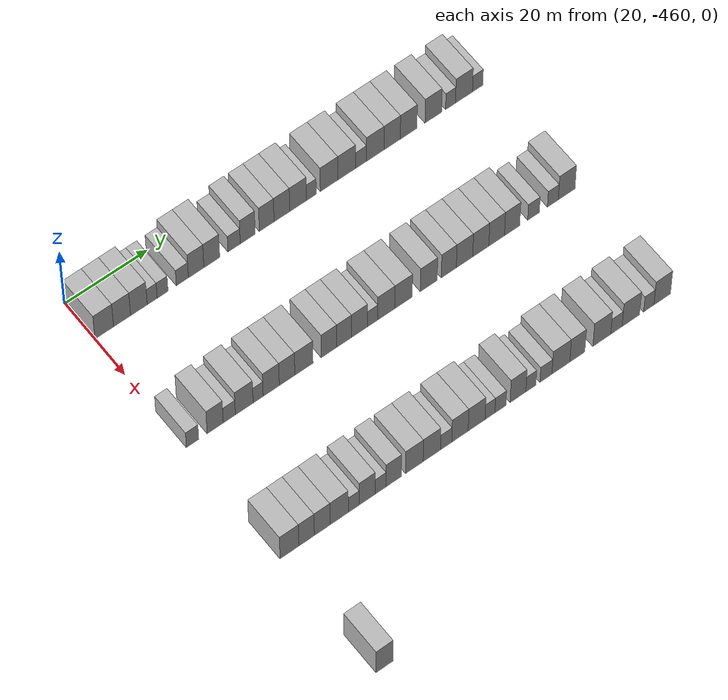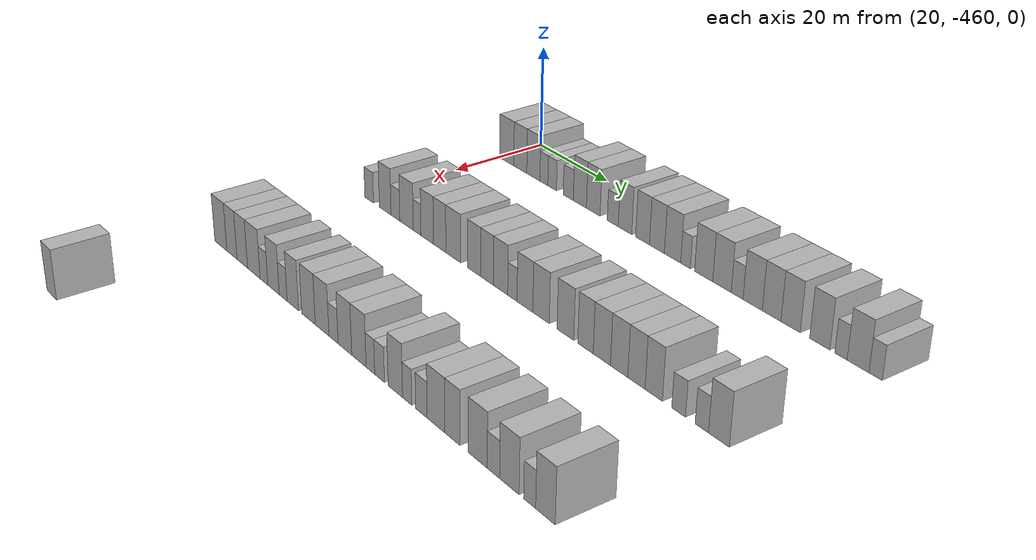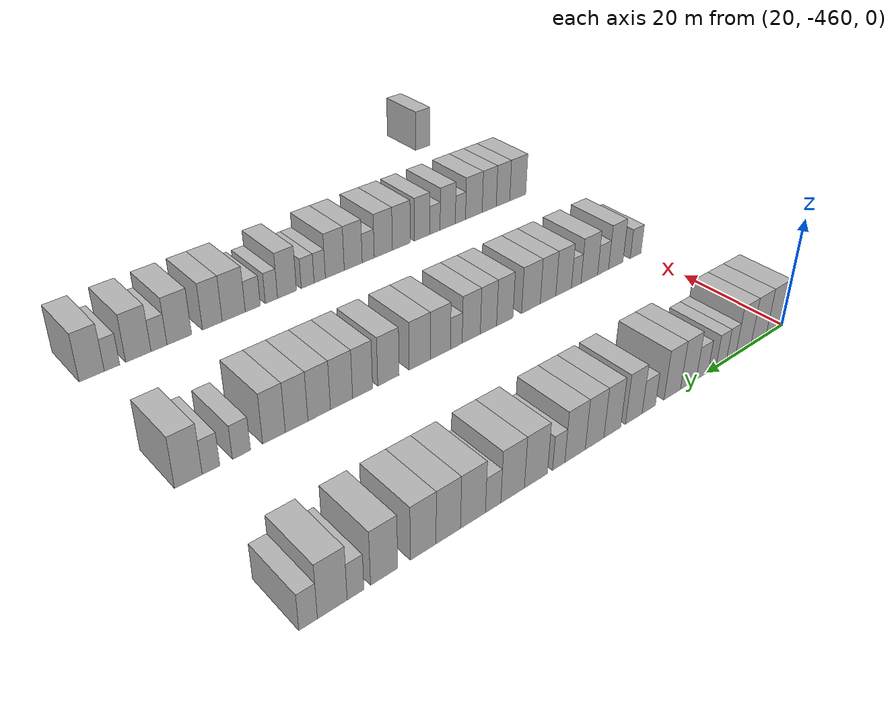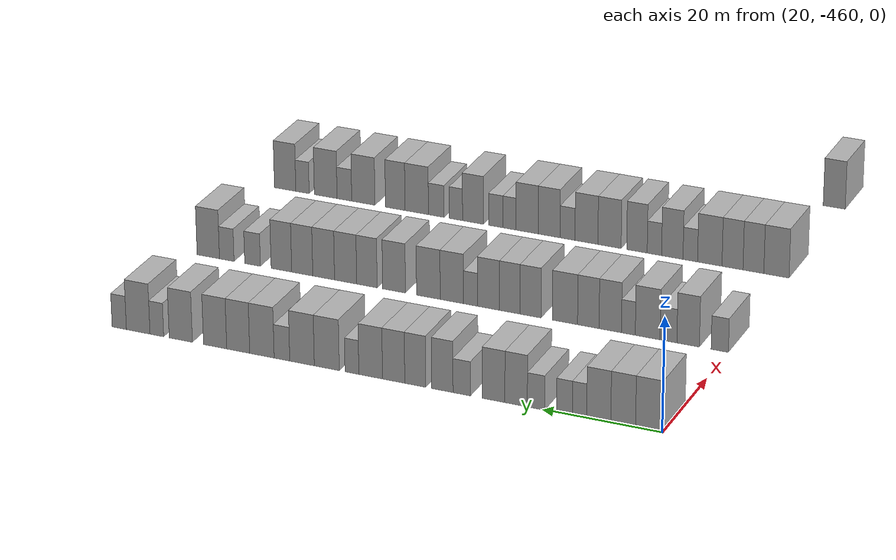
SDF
<sdf version="1.6">
 <world name="default">
  <model name="building_1">
   <static>1</static>
   <pose>25.0000 -457.7579 0 0.000000 0.000000 0.000000</pose>
   <link name="link">
    <pose>0 0 4.50 0 0 0</pose>
    <collision name="collision"><geometry><box><size>10.0000 4.4843 9.0000</size></box></geometry></collision>
    <visual name="visual">
     <cast_shadows>0</cast_shadows>
     <geometry><box><size>10.0000 4.4843 9.0000</size></box></geometry>
     <material>
      <script>
       <uri>model://HANNAS_wall/materials/scripts</uri>
       <uri>model://HANNAS_wall/materials/textures</uri>
       <name>vrc/HANNAS_wall</name>
      </script>
     </material>
    </visual>
   </link>
  </model>
  <model name="building_2">
   <static>1</static>
   <pose>25.0000 -453.4642 0 0.000000 0.000000 0.000000</pose>
   <link name="link">
    <pose>0 0 4.50 0 0 0</pose>
    <collision name="collision"><geometry><box><size>10.0000 4.1032 9.0000</size></box></geometry></collision>
    <visual name="visual">
     <cast_shadows>0</cast_shadows>
     <geometry><box><size>10.0000 4.1032 9.0000</size></box></geometry>
     <material>
      <script>
       <uri>model://HANNAS_wall/materials/scripts</uri>
       <uri>model://HANNAS_wall/materials/textures</uri>
       <name>vrc/HANNAS_wall</name>
      </script>
     </material>
    </visual>
   </link>
  </model>
  <model name="building_3">
   <static>1</static>
   <pose>25.0000 -449.4047 0 0.000000 0.000000 0.000000</pose>
   <link name="link">
    <pose>0 0 4.50 0 0 0</pose>
    <collision name="collision"><geometry><box><size>10.0000 4.0158 9.0000</size></box></geometry></collision>
    <visual name="visual">
     <cast_shadows>0</cast_shadows>
     <geometry><box><size>10.0000 4.0158 9.0000</size></box></geometry>
     <material>
      <script>
       <uri>model://HANNAS_wall/materials/scripts</uri>
       <uri>model://HANNAS_wall/materials/textures</uri>
       <name>vrc/HANNAS_wall</name>
      </script>
     </material>
    </visual>
   </link>
  </model>
  <model name="building_4">
   <static>1</static>
   <pose>25.0000 -446.1932 0 0.000000 0.000000 0.000000</pose>
   <link name="link">
    <pose>0 0 3.00 0 0 0</pose>
    <collision name="collision"><geometry><box><size>10.0000 2.4072 6.0000</size></box></geometry></collision>
    <visual name="visual">
     <cast_shadows>0</cast_shadows>
     <geometry><box><size>10.0000 2.4072 6.0000</size></box></geometry>
     <material>
      <script>
       <uri>model://HANNAS_wall/materials/scripts</uri>
       <uri>model://HANNAS_wall/materials/textures</uri>
       <name>vrc/HANNAS_wall</name>
      </script>
     </material>
    </visual>
   </link>
  </model>
  <model name="building_5">
   <static>1</static>
   <pose>25.0000 -443.6745 0 0.000000 0.000000 0.000000</pose>
   <link name="link">
    <pose>0 0 3.00 0 0 0</pose>
    <collision name="collision"><geometry><box><size>10.0000 2.6302 6.0000</size></box></geometry></collision>
    <visual name="visual">
     <cast_shadows>0</cast_shadows>
     <geometry><box><size>10.0000 2.6302 6.0000</size></box></geometry>
     <material>
      <script>
       <uri>model://HANNAS_wall/materials/scripts</uri>
       <uri>model://HANNAS_wall/materials/textures</uri>
       <name>vrc/HANNAS_wall</name>
      </script>
     </material>
    </visual>
   </link>
  </model>
  <model name="building_6">
   <static>1</static>
   <pose>25.0000 -438.8944 0 0.000000 0.000000 0.000000</pose>
   <link name="link">
    <pose>0 0 3.00 0 0 0</pose>
    <collision name="collision"><geometry><box><size>10.0000 2.9301 6.0000</size></box></geometry></collision>
    <visual name="visual">
     <cast_shadows>0</cast_shadows>
     <geometry><box><size>10.0000 2.9301 6.0000</size></box></geometry>
     <material>
      <script>
       <uri>model://HANNAS_wall/materials/scripts</uri>
       <uri>model://HANNAS_wall/materials/textures</uri>
       <name>vrc/HANNAS_wall</name>
      </script>
     </material>
    </visual>
   </link>
  </model>
  <model name="building_7">
   <static>1</static>
   <pose>25.0000 -435.5347 0 0.000000 0.000000 0.000000</pose>
   <link name="link">
    <pose>0 0 4.50 0 0 0</pose>
    <collision name="collision"><geometry><box><size>10.0000 3.7892 9.0000</size></box></geometry></collision>
    <visual name="visual">
     <cast_shadows>0</cast_shadows>
     <geometry><box><size>10.0000 3.7892 9.0000</size></box></geometry>
     <material>
      <script>
       <uri>model://HANNAS_wall/materials/scripts</uri>
       <uri>model://HANNAS_wall/materials/textures</uri>
       <name>vrc/HANNAS_wall</name>
      </script>
     </material>
    </visual>
   </link>
  </model>
  <model name="building_8">
   <static>1</static>
   <pose>25.0000 -431.7124 0 0.000000 0.000000 0.000000</pose>
   <link name="link">
    <pose>0 0 4.50 0 0 0</pose>
    <collision name="collision"><geometry><box><size>10.0000 3.8554 9.0000</size></box></geometry></collision>
    <visual name="visual">
     <cast_shadows>0</cast_shadows>
     <geometry><box><size>10.0000 3.8554 9.0000</size></box></geometry>
     <material>
      <script>
       <uri>model://HANNAS_wall/materials/scripts</uri>
       <uri>model://HANNAS_wall/materials/textures</uri>
       <name>vrc/HANNAS_wall</name>
      </script>
     </material>
    </visual>
   </link>
  </model>
  <model name="building_9">
   <static>1</static>
   <pose>25.0000 -426.2858 0 0.000000 0.000000 0.000000</pose>
   <link name="link">
    <pose>0 0 3.00 0 0 0</pose>
    <collision name="collision"><geometry><box><size>10.0000 2.9977 6.0000</size></box></geometry></collision>
    <visual name="visual">
     <cast_shadows>0</cast_shadows>
     <geometry><box><size>10.0000 2.9977 6.0000</size></box></geometry>
     <material>
      <script>
       <uri>model://HANNAS_wall/materials/scripts</uri>
       <uri>model://HANNAS_wall/materials/textures</uri>
       <name>vrc/HANNAS_wall</name>
      </script>
     </material>
    </visual>
   </link>
  </model>
  <model name="building_10">
   <static>1</static>
   <pose>25.0000 -422.9470 0 0.000000 0.000000 0.000000</pose>
   <link name="link">
    <pose>0 0 4.50 0 0 0</pose>
    <collision name="collision"><geometry><box><size>10.0000 3.6799 9.0000</size></box></geometry></collision>
    <visual name="visual">
     <cast_shadows>0</cast_shadows>
     <geometry><box><size>10.0000 3.6799 9.0000</size></box></geometry>
     <material>
      <script>
       <uri>model://HANNAS_wall/materials/scripts</uri>
       <uri>model://HANNAS_wall/materials/textures</uri>
       <name>vrc/HANNAS_wall</name>
      </script>
     </material>
    </visual>
   </link>
  </model>
  <model name="building_11">
   <static>1</static>
   <pose>25.0000 -418.2934 0 0.000000 0.000000 0.000000</pose>
   <link name="link">
    <pose>0 0 4.50 0 0 0</pose>
    <collision name="collision"><geometry><box><size>10.0000 3.6275 9.0000</size></box></geometry></collision>
    <visual name="visual">
     <cast_shadows>0</cast_shadows>
     <geometry><box><size>10.0000 3.6275 9.0000</size></box></geometry>
     <material>
      <script>
       <uri>model://HANNAS_wall/materials/scripts</uri>
       <uri>model://HANNAS_wall/materials/textures</uri>
       <name>vrc/HANNAS_wall</name>
      </script>
     </material>
    </visual>
   </link>
  </model>
  <model name="building_12">
   <static>1</static>
   <pose>25.0000 -414.5491 0 0.000000 0.000000 0.000000</pose>
   <link name="link">
    <pose>0 0 4.50 0 0 0</pose>
    <collision name="collision"><geometry><box><size>10.0000 3.8611 9.0000</size></box></geometry></collision>
    <visual name="visual">
     <cast_shadows>0</cast_shadows>
     <geometry><box><size>10.0000 3.8611 9.0000</size></box></geometry>
     <material>
      <script>
       <uri>model://HANNAS_wall/materials/scripts</uri>
       <uri>model://HANNAS_wall/materials/textures</uri>
       <name>vrc/HANNAS_wall</name>
      </script>
     </material>
    </visual>
   </link>
  </model>
  <model name="building_13">
   <static>1</static>
   <pose>25.0000 -410.5557 0 0.000000 0.000000 0.000000</pose>
   <link name="link">
    <pose>0 0 4.50 0 0 0</pose>
    <collision name="collision"><geometry><box><size>10.0000 4.1257 9.0000</size></box></geometry></collision>
    <visual name="visual">
     <cast_shadows>0</cast_shadows>
     <geometry><box><size>10.0000 4.1257 9.0000</size></box></geometry>
     <material>
      <script>
       <uri>model://HANNAS_wall/materials/scripts</uri>
       <uri>model://HANNAS_wall/materials/textures</uri>
       <name>vrc/HANNAS_wall</name>
      </script>
     </material>
    </visual>
   </link>
  </model>
  <model name="building_14">
   <static>1</static>
   <pose>25.0000 -407.2858 0 0.000000 0.000000 0.000000</pose>
   <link name="link">
    <pose>0 0 3.00 0 0 0</pose>
    <collision name="collision"><geometry><box><size>10.0000 2.4140 6.0000</size></box></geometry></collision>
    <visual name="visual">
     <cast_shadows>0</cast_shadows>
     <geometry><box><size>10.0000 2.4140 6.0000</size></box></geometry>
     <material>
      <script>
       <uri>model://HANNAS_wall/materials/scripts</uri>
       <uri>model://HANNAS_wall/materials/textures</uri>
       <name>vrc/HANNAS_wall</name>
      </script>
     </material>
    </visual>
   </link>
  </model>
  <model name="building_15">
   <static>1</static>
   <pose>25.0000 -402.8836 0 0.000000 0.000000 0.000000</pose>
   <link name="link">
    <pose>0 0 4.50 0 0 0</pose>
    <collision name="collision"><geometry><box><size>10.0000 4.3905 9.0000</size></box></geometry></collision>
    <visual name="visual">
     <cast_shadows>0</cast_shadows>
     <geometry><box><size>10.0000 4.3905 9.0000</size></box></geometry>
     <material>
      <script>
       <uri>model://HANNAS_wall/materials/scripts</uri>
       <uri>model://HANNAS_wall/materials/textures</uri>
       <name>vrc/HANNAS_wall</name>
      </script>
     </material>
    </visual>
   </link>
  </model>
  <model name="building_16">
   <static>1</static>
   <pose>25.0000 -398.5173 0 0.000000 0.000000 0.000000</pose>
   <link name="link">
    <pose>0 0 4.50 0 0 0</pose>
    <collision name="collision"><geometry><box><size>10.0000 4.3420 9.0000</size></box></geometry></collision>
    <visual name="visual">
     <cast_shadows>0</cast_shadows>
     <geometry><box><size>10.0000 4.3420 9.0000</size></box></geometry>
     <material>
      <script>
       <uri>model://HANNAS_wall/materials/scripts</uri>
       <uri>model://HANNAS_wall/materials/textures</uri>
       <name>vrc/HANNAS_wall</name>
      </script>
     </material>
    </visual>
   </link>
  </model>
  <model name="building_17">
   <static>1</static>
   <pose>25.0000 -394.9663 0 0.000000 0.000000 0.000000</pose>
   <link name="link">
    <pose>0 0 3.00 0 0 0</pose>
    <collision name="collision"><geometry><box><size>10.0000 2.7601 6.0000</size></box></geometry></collision>
    <visual name="visual">
     <cast_shadows>0</cast_shadows>
     <geometry><box><size>10.0000 2.7601 6.0000</size></box></geometry>
     <material>
      <script>
       <uri>model://HANNAS_wall/materials/scripts</uri>
       <uri>model://HANNAS_wall/materials/textures</uri>
       <name>vrc/HANNAS_wall</name>
      </script>
     </material>
    </visual>
   </link>
  </model>
  <model name="building_18">
   <static>1</static>
   <pose>25.0000 -391.4128 0 0.000000 0.000000 0.000000</pose>
   <link name="link">
    <pose>0 0 4.50 0 0 0</pose>
    <collision name="collision"><geometry><box><size>10.0000 4.3470 9.0000</size></box></geometry></collision>
    <visual name="visual">
     <cast_shadows>0</cast_shadows>
     <geometry><box><size>10.0000 4.3470 9.0000</size></box></geometry>
     <material>
      <script>
       <uri>model://HANNAS_wall/materials/scripts</uri>
       <uri>model://HANNAS_wall/materials/textures</uri>
       <name>vrc/HANNAS_wall</name>
      </script>
     </material>
    </visual>
   </link>
  </model>
  <model name="building_19">
   <static>1</static>
   <pose>25.0000 -387.1824 0 0.000000 0.000000 0.000000</pose>
   <link name="link">
    <pose>0 0 4.50 0 0 0</pose>
    <collision name="collision"><geometry><box><size>10.0000 4.1136 9.0000</size></box></geometry></collision>
    <visual name="visual">
     <cast_shadows>0</cast_shadows>
     <geometry><box><size>10.0000 4.1136 9.0000</size></box></geometry>
     <material>
      <script>
       <uri>model://HANNAS_wall/materials/scripts</uri>
       <uri>model://HANNAS_wall/materials/textures</uri>
       <name>vrc/HANNAS_wall</name>
      </script>
     </material>
    </visual>
   </link>
  </model>
  <model name="building_20">
   <static>1</static>
   <pose>25.0000 -383.0420 0 0.000000 0.000000 0.000000</pose>
   <link name="link">
    <pose>0 0 4.50 0 0 0</pose>
    <collision name="collision"><geometry><box><size>10.0000 4.1672 9.0000</size></box></geometry></collision>
    <visual name="visual">
     <cast_shadows>0</cast_shadows>
     <geometry><box><size>10.0000 4.1672 9.0000</size></box></geometry>
     <material>
      <script>
       <uri>model://HANNAS_wall/materials/scripts</uri>
       <uri>model://HANNAS_wall/materials/textures</uri>
       <name>vrc/HANNAS_wall</name>
      </script>
     </material>
    </visual>
   </link>
  </model>
  <model name="building_21">
   <static>1</static>
   <pose>25.0000 -376.8590 0 0.000000 0.000000 0.000000</pose>
   <link name="link">
    <pose>0 0 4.50 0 0 0</pose>
    <collision name="collision"><geometry><box><size>10.0000 4.1989 9.0000</size></box></geometry></collision>
    <visual name="visual">
     <cast_shadows>0</cast_shadows>
     <geometry><box><size>10.0000 4.1989 9.0000</size></box></geometry>
     <material>
      <script>
       <uri>model://HANNAS_wall/materials/scripts</uri>
       <uri>model://HANNAS_wall/materials/textures</uri>
       <name>vrc/HANNAS_wall</name>
      </script>
     </material>
    </visual>
   </link>
  </model>
  <model name="building_22">
   <static>1</static>
   <pose>25.0000 -372.5110 0 0.000000 0.000000 0.000000</pose>
   <link name="link">
    <pose>0 0 3.00 0 0 0</pose>
    <collision name="collision"><geometry><box><size>10.0000 2.4970 6.0000</size></box></geometry></collision>
    <visual name="visual">
     <cast_shadows>0</cast_shadows>
     <geometry><box><size>10.0000 2.4970 6.0000</size></box></geometry>
     <material>
      <script>
       <uri>model://HANNAS_wall/materials/scripts</uri>
       <uri>model://HANNAS_wall/materials/textures</uri>
       <name>vrc/HANNAS_wall</name>
      </script>
     </material>
    </visual>
   </link>
  </model>
  <model name="building_23">
   <static>1</static>
   <pose>25.0000 -369.1126 0 0.000000 0.000000 0.000000</pose>
   <link name="link">
    <pose>0 0 4.50 0 0 0</pose>
    <collision name="collision"><geometry><box><size>10.0000 4.3000 9.0000</size></box></geometry></collision>
    <visual name="visual">
     <cast_shadows>0</cast_shadows>
     <geometry><box><size>10.0000 4.3000 9.0000</size></box></geometry>
     <material>
      <script>
       <uri>model://HANNAS_wall/materials/scripts</uri>
       <uri>model://HANNAS_wall/materials/textures</uri>
       <name>vrc/HANNAS_wall</name>
      </script>
     </material>
    </visual>
   </link>
  </model>
  <model name="building_24">
   <static>1</static>
   <pose>25.0000 -365.6588 0 0.000000 0.000000 0.000000</pose>
   <link name="link">
    <pose>0 0 3.00 0 0 0</pose>
    <collision name="collision"><geometry><box><size>10.0000 2.6075 6.0000</size></box></geometry></collision>
    <visual name="visual">
     <cast_shadows>0</cast_shadows>
     <geometry><box><size>10.0000 2.6075 6.0000</size></box></geometry>
     <material>
      <script>
       <uri>model://HANNAS_wall/materials/scripts</uri>
       <uri>model://HANNAS_wall/materials/textures</uri>
       <name>vrc/HANNAS_wall</name>
      </script>
     </material>
    </visual>
   </link>
  </model>
  <model name="building_228">
   <static>1</static>
   <pose>55.0000 -458.5195 0 0.000000 0.000000 0.000000</pose>
   <link name="link">
    <pose>0 0 3.00 0 0 0</pose>
    <collision name="collision"><geometry><box><size>10.0000 2.9610 6.0000</size></box></geometry></collision>
    <visual name="visual">
     <cast_shadows>0</cast_shadows>
     <geometry><box><size>10.0000 2.9610 6.0000</size></box></geometry>
     <material>
      <script>
       <uri>model://HANNAS_wall/materials/scripts</uri>
       <uri>model://HANNAS_wall/materials/textures</uri>
       <name>vrc/HANNAS_wall</name>
      </script>
     </material>
    </visual>
   </link>
  </model>
  <model name="building_229">
   <static>1</static>
   <pose>55.0000 -453.1050 0 0.000000 0.000000 0.000000</pose>
   <link name="link">
    <pose>0 0 4.50 0 0 0</pose>
    <collision name="collision"><geometry><box><size>10.0000 3.8680 9.0000</size></box></geometry></collision>
    <visual name="visual">
     <cast_shadows>0</cast_shadows>
     <geometry><box><size>10.0000 3.8680 9.0000</size></box></geometry>
     <material>
      <script>
       <uri>model://HANNAS_wall/materials/scripts</uri>
       <uri>model://HANNAS_wall/materials/textures</uri>
       <name>vrc/HANNAS_wall</name>
      </script>
     </material>
    </visual>
   </link>
  </model>
  <model name="building_230">
   <static>1</static>
   <pose>55.0000 -449.7232 0 0.000000 0.000000 0.000000</pose>
   <link name="link">
    <pose>0 0 3.00 0 0 0</pose>
    <collision name="collision"><geometry><box><size>10.0000 2.8954 6.0000</size></box></geometry></collision>
    <visual name="visual">
     <cast_shadows>0</cast_shadows>
     <geometry><box><size>10.0000 2.8954 6.0000</size></box></geometry>
     <material>
      <script>
       <uri>model://HANNAS_wall/materials/scripts</uri>
       <uri>model://HANNAS_wall/materials/textures</uri>
       <name>vrc/HANNAS_wall</name>
      </script>
     </material>
    </visual>
   </link>
  </model>
  <model name="building_231">
   <static>1</static>
   <pose>55.0000 -446.1312 0 0.000000 0.000000 0.000000</pose>
   <link name="link">
    <pose>0 0 4.50 0 0 0</pose>
    <collision name="collision"><geometry><box><size>10.0000 4.2886 9.0000</size></box></geometry></collision>
    <visual name="visual">
     <cast_shadows>0</cast_shadows>
     <geometry><box><size>10.0000 4.2886 9.0000</size></box></geometry>
     <material>
      <script>
       <uri>model://HANNAS_wall/materials/scripts</uri>
       <uri>model://HANNAS_wall/materials/textures</uri>
       <name>vrc/HANNAS_wall</name>
      </script>
     </material>
    </visual>
   </link>
  </model>
  <model name="building_232">
   <static>1</static>
   <pose>55.0000 -442.7854 0 0.000000 0.000000 0.000000</pose>
   <link name="link">
    <pose>0 0 3.00 0 0 0</pose>
    <collision name="collision"><geometry><box><size>10.0000 2.4029 6.0000</size></box></geometry></collision>
    <visual name="visual">
     <cast_shadows>0</cast_shadows>
     <geometry><box><size>10.0000 2.4029 6.0000</size></box></geometry>
     <material>
      <script>
       <uri>model://HANNAS_wall/materials/scripts</uri>
       <uri>model://HANNAS_wall/materials/textures</uri>
       <name>vrc/HANNAS_wall</name>
      </script>
     </material>
    </visual>
   </link>
  </model>
  <model name="building_233">
   <static>1</static>
   <pose>55.0000 -439.6342 0 0.000000 0.000000 0.000000</pose>
   <link name="link">
    <pose>0 0 4.50 0 0 0</pose>
    <collision name="collision"><geometry><box><size>10.0000 3.8996 9.0000</size></box></geometry></collision>
    <visual name="visual">
     <cast_shadows>0</cast_shadows>
     <geometry><box><size>10.0000 3.8996 9.0000</size></box></geometry>
     <material>
      <script>
       <uri>model://HANNAS_wall/materials/scripts</uri>
       <uri>model://HANNAS_wall/materials/textures</uri>
       <name>vrc/HANNAS_wall</name>
      </script>
     </material>
    </visual>
   </link>
  </model>
  <model name="building_234">
   <static>1</static>
   <pose>55.0000 -435.8020 0 0.000000 0.000000 0.000000</pose>
   <link name="link">
    <pose>0 0 4.50 0 0 0</pose>
    <collision name="collision"><geometry><box><size>10.0000 3.7647 9.0000</size></box></geometry></collision>
    <visual name="visual">
     <cast_shadows>0</cast_shadows>
     <geometry><box><size>10.0000 3.7647 9.0000</size></box></geometry>
     <material>
      <script>
       <uri>model://HANNAS_wall/materials/scripts</uri>
       <uri>model://HANNAS_wall/materials/textures</uri>
       <name>vrc/HANNAS_wall</name>
      </script>
     </material>
    </visual>
   </link>
  </model>
  <model name="building_235">
   <static>1</static>
   <pose>55.0000 -431.7110 0 0.000000 0.000000 0.000000</pose>
   <link name="link">
    <pose>0 0 4.50 0 0 0</pose>
    <collision name="collision"><geometry><box><size>10.0000 4.4172 9.0000</size></box></geometry></collision>
    <visual name="visual">
     <cast_shadows>0</cast_shadows>
     <geometry><box><size>10.0000 4.4172 9.0000</size></box></geometry>
     <material>
      <script>
       <uri>model://HANNAS_wall/materials/scripts</uri>
       <uri>model://HANNAS_wall/materials/textures</uri>
       <name>vrc/HANNAS_wall</name>
      </script>
     </material>
    </visual>
   </link>
  </model>
  <model name="building_236">
   <static>1</static>
   <pose>55.0000 -425.6363 0 0.000000 0.000000 0.000000</pose>
   <link name="link">
    <pose>0 0 4.50 0 0 0</pose>
    <collision name="collision"><geometry><box><size>10.0000 3.7322 9.0000</size></box></geometry></collision>
    <visual name="visual">
     <cast_shadows>0</cast_shadows>
     <geometry><box><size>10.0000 3.7322 9.0000</size></box></geometry>
     <material>
      <script>
       <uri>model://HANNAS_wall/materials/scripts</uri>
       <uri>model://HANNAS_wall/materials/textures</uri>
       <name>vrc/HANNAS_wall</name>
      </script>
     </material>
    </visual>
   </link>
  </model>
  <model name="building_237">
   <static>1</static>
   <pose>55.0000 -421.9531 0 0.000000 0.000000 0.000000</pose>
   <link name="link">
    <pose>0 0 4.50 0 0 0</pose>
    <collision name="collision"><geometry><box><size>10.0000 3.6342 9.0000</size></box></geometry></collision>
    <visual name="visual">
     <cast_shadows>0</cast_shadows>
     <geometry><box><size>10.0000 3.6342 9.0000</size></box></geometry>
     <material>
      <script>
       <uri>model://HANNAS_wall/materials/scripts</uri>
       <uri>model://HANNAS_wall/materials/textures</uri>
       <name>vrc/HANNAS_wall</name>
      </script>
     </material>
    </visual>
   </link>
  </model>
  <model name="building_238">
   <static>1</static>
   <pose>55.0000 -418.1626 0 0.000000 0.000000 0.000000</pose>
   <link name="link">
    <pose>0 0 4.50 0 0 0</pose>
    <collision name="collision"><geometry><box><size>10.0000 3.9468 9.0000</size></box></geometry></collision>
    <visual name="visual">
     <cast_shadows>0</cast_shadows>
     <geometry><box><size>10.0000 3.9468 9.0000</size></box></geometry>
     <material>
      <script>
       <uri>model://HANNAS_wall/materials/scripts</uri>
       <uri>model://HANNAS_wall/materials/textures</uri>
       <name>vrc/HANNAS_wall</name>
      </script>
     </material>
    </visual>
   </link>
  </model>
  <model name="building_239">
   <static>1</static>
   <pose>55.0000 -414.9435 0 0.000000 0.000000 0.000000</pose>
   <link name="link">
    <pose>0 0 3.00 0 0 0</pose>
    <collision name="collision"><geometry><box><size>10.0000 2.4914 6.0000</size></box></geometry></collision>
    <visual name="visual">
     <cast_shadows>0</cast_shadows>
     <geometry><box><size>10.0000 2.4914 6.0000</size></box></geometry>
     <material>
      <script>
       <uri>model://HANNAS_wall/materials/scripts</uri>
       <uri>model://HANNAS_wall/materials/textures</uri>
       <name>vrc/HANNAS_wall</name>
      </script>
     </material>
    </visual>
   </link>
  </model>
  <model name="building_240">
   <static>1</static>
   <pose>55.0000 -411.6043 0 0.000000 0.000000 0.000000</pose>
   <link name="link">
    <pose>0 0 4.50 0 0 0</pose>
    <collision name="collision"><geometry><box><size>10.0000 4.1871 9.0000</size></box></geometry></collision>
    <visual name="visual">
     <cast_shadows>0</cast_shadows>
     <geometry><box><size>10.0000 4.1871 9.0000</size></box></geometry>
     <material>
      <script>
       <uri>model://HANNAS_wall/materials/scripts</uri>
       <uri>model://HANNAS_wall/materials/textures</uri>
       <name>vrc/HANNAS_wall</name>
      </script>
     </material>
    </visual>
   </link>
  </model>
  <model name="building_241">
   <static>1</static>
   <pose>55.0000 -407.3748 0 0.000000 0.000000 0.000000</pose>
   <link name="link">
    <pose>0 0 4.50 0 0 0</pose>
    <collision name="collision"><geometry><box><size>10.0000 4.2718 9.0000</size></box></geometry></collision>
    <visual name="visual">
     <cast_shadows>0</cast_shadows>
     <geometry><box><size>10.0000 4.2718 9.0000</size></box></geometry>
     <material>
      <script>
       <uri>model://HANNAS_wall/materials/scripts</uri>
       <uri>model://HANNAS_wall/materials/textures</uri>
       <name>vrc/HANNAS_wall</name>
      </script>
     </material>
    </visual>
   </link>
  </model>
  <model name="building_242">
   <static>1</static>
   <pose>55.0000 -401.1637 0 0.000000 0.000000 0.000000</pose>
   <link name="link">
    <pose>0 0 4.50 0 0 0</pose>
    <collision name="collision"><geometry><box><size>10.0000 4.1505 9.0000</size></box></geometry></collision>
    <visual name="visual">
     <cast_shadows>0</cast_shadows>
     <geometry><box><size>10.0000 4.1505 9.0000</size></box></geometry>
     <material>
      <script>
       <uri>model://HANNAS_wall/materials/scripts</uri>
       <uri>model://HANNAS_wall/materials/textures</uri>
       <name>vrc/HANNAS_wall</name>
      </script>
     </material>
    </visual>
   </link>
  </model>
  <model name="building_243">
   <static>1</static>
   <pose>55.0000 -396.2180 0 0.000000 0.000000 0.000000</pose>
   <link name="link">
    <pose>0 0 4.50 0 0 0</pose>
    <collision name="collision"><geometry><box><size>10.0000 3.7409 9.0000</size></box></geometry></collision>
    <visual name="visual">
     <cast_shadows>0</cast_shadows>
     <geometry><box><size>10.0000 3.7409 9.0000</size></box></geometry>
     <material>
      <script>
       <uri>model://HANNAS_wall/materials/scripts</uri>
       <uri>model://HANNAS_wall/materials/textures</uri>
       <name>vrc/HANNAS_wall</name>
      </script>
     </material>
    </visual>
   </link>
  </model>
  <model name="building_244">
   <static>1</static>
   <pose>55.0000 -392.3163 0 0.000000 0.000000 0.000000</pose>
   <link name="link">
    <pose>0 0 4.50 0 0 0</pose>
    <collision name="collision"><geometry><box><size>10.0000 4.0624 9.0000</size></box></geometry></collision>
    <visual name="visual">
     <cast_shadows>0</cast_shadows>
     <geometry><box><size>10.0000 4.0624 9.0000</size></box></geometry>
     <material>
      <script>
       <uri>model://HANNAS_wall/materials/scripts</uri>
       <uri>model://HANNAS_wall/materials/textures</uri>
       <name>vrc/HANNAS_wall</name>
      </script>
     </material>
    </visual>
   </link>
  </model>
  <model name="building_245">
   <static>1</static>
   <pose>55.0000 -388.2770 0 0.000000 0.000000 0.000000</pose>
   <link name="link">
    <pose>0 0 4.50 0 0 0</pose>
    <collision name="collision"><geometry><box><size>10.0000 4.0162 9.0000</size></box></geometry></collision>
    <visual name="visual">
     <cast_shadows>0</cast_shadows>
     <geometry><box><size>10.0000 4.0162 9.0000</size></box></geometry>
     <material>
      <script>
       <uri>model://HANNAS_wall/materials/scripts</uri>
       <uri>model://HANNAS_wall/materials/textures</uri>
       <name>vrc/HANNAS_wall</name>
      </script>
     </material>
    </visual>
   </link>
  </model>
  <model name="building_246">
   <static>1</static>
   <pose>55.0000 -384.3195 0 0.000000 0.000000 0.000000</pose>
   <link name="link">
    <pose>0 0 4.50 0 0 0</pose>
    <collision name="collision"><geometry><box><size>10.0000 3.8988 9.0000</size></box></geometry></collision>
    <visual name="visual">
     <cast_shadows>0</cast_shadows>
     <geometry><box><size>10.0000 3.8988 9.0000</size></box></geometry>
     <material>
      <script>
       <uri>model://HANNAS_wall/materials/scripts</uri>
       <uri>model://HANNAS_wall/materials/textures</uri>
       <name>vrc/HANNAS_wall</name>
      </script>
     </material>
    </visual>
   </link>
  </model>
  <model name="building_247">
   <static>1</static>
   <pose>55.0000 -380.4579 0 0.000000 0.000000 0.000000</pose>
   <link name="link">
    <pose>0 0 4.50 0 0 0</pose>
    <collision name="collision"><geometry><box><size>10.0000 3.8243 9.0000</size></box></geometry></collision>
    <visual name="visual">
     <cast_shadows>0</cast_shadows>
     <geometry><box><size>10.0000 3.8243 9.0000</size></box></geometry>
     <material>
      <script>
       <uri>model://HANNAS_wall/materials/scripts</uri>
       <uri>model://HANNAS_wall/materials/textures</uri>
       <name>vrc/HANNAS_wall</name>
      </script>
     </material>
    </visual>
   </link>
  </model>
  <model name="building_248">
   <static>1</static>
   <pose>55.0000 -375.0784 0 0.000000 0.000000 0.000000</pose>
   <link name="link">
    <pose>0 0 3.00 0 0 0</pose>
    <collision name="collision"><geometry><box><size>10.0000 2.9348 6.0000</size></box></geometry></collision>
    <visual name="visual">
     <cast_shadows>0</cast_shadows>
     <geometry><box><size>10.0000 2.9348 6.0000</size></box></geometry>
     <material>
      <script>
       <uri>model://HANNAS_wall/materials/scripts</uri>
       <uri>model://HANNAS_wall/materials/textures</uri>
       <name>vrc/HANNAS_wall</name>
      </script>
     </material>
    </visual>
   </link>
  </model>
  <model name="building_249">
   <static>1</static>
   <pose>55.0000 -370.2380 0 0.000000 0.000000 0.000000</pose>
   <link name="link">
    <pose>0 0 3.00 0 0 0</pose>
    <collision name="collision"><geometry><box><size>10.0000 2.7460 6.0000</size></box></geometry></collision>
    <visual name="visual">
     <cast_shadows>0</cast_shadows>
     <geometry><box><size>10.0000 2.7460 6.0000</size></box></geometry>
     <material>
      <script>
       <uri>model://HANNAS_wall/materials/scripts</uri>
       <uri>model://HANNAS_wall/materials/textures</uri>
       <name>vrc/HANNAS_wall</name>
      </script>
     </material>
    </visual>
   </link>
  </model>
  <model name="building_250">
   <static>1</static>
   <pose>55.0000 -366.7615 0 0.000000 0.000000 0.000000</pose>
   <link name="link">
    <pose>0 0 4.50 0 0 0</pose>
    <collision name="collision"><geometry><box><size>10.0000 4.2069 9.0000</size></box></geometry></collision>
    <visual name="visual">
     <cast_shadows>0</cast_shadows>
     <geometry><box><size>10.0000 4.2069 9.0000</size></box></geometry>
     <material>
      <script>
       <uri>model://HANNAS_wall/materials/scripts</uri>
       <uri>model://HANNAS_wall/materials/textures</uri>
       <name>vrc/HANNAS_wall</name>
      </script>
     </material>
    </visual>
   </link>
  </model>
  <model name="building_459">
   <static>1</static>
   <pose>85.0000 -457.7683 0 0.000000 0.000000 0.000000</pose>
   <link name="link">
    <pose>0 0 4.50 0 0 0</pose>
    <collision name="collision"><geometry><box><size>10.0000 4.4635 9.0000</size></box></geometry></collision>
    <visual name="visual">
     <cast_shadows>0</cast_shadows>
     <geometry><box><size>10.0000 4.4635 9.0000</size></box></geometry>
     <material>
      <script>
       <uri>model://HANNAS_wall/materials/scripts</uri>
       <uri>model://HANNAS_wall/materials/textures</uri>
       <name>vrc/HANNAS_wall</name>
      </script>
     </material>
    </visual>
   </link>
  </model>
  <model name="building_460">
   <static>1</static>
   <pose>85.0000 -453.6901 0 0.000000 0.000000 0.000000</pose>
   <link name="link">
    <pose>0 0 4.50 0 0 0</pose>
    <collision name="collision"><geometry><box><size>10.0000 3.6928 9.0000</size></box></geometry></collision>
    <visual name="visual">
     <cast_shadows>0</cast_shadows>
     <geometry><box><size>10.0000 3.6928 9.0000</size></box></geometry>
     <material>
      <script>
       <uri>model://HANNAS_wall/materials/scripts</uri>
       <uri>model://HANNAS_wall/materials/textures</uri>
       <name>vrc/HANNAS_wall</name>
      </script>
     </material>
    </visual>
   </link>
  </model>
  <model name="building_461">
   <static>1</static>
   <pose>85.0000 -449.9724 0 0.000000 0.000000 0.000000</pose>
   <link name="link">
    <pose>0 0 4.50 0 0 0</pose>
    <collision name="collision"><geometry><box><size>10.0000 3.7427 9.0000</size></box></geometry></collision>
    <visual name="visual">
     <cast_shadows>0</cast_shadows>
     <geometry><box><size>10.0000 3.7427 9.0000</size></box></geometry>
     <material>
      <script>
       <uri>model://HANNAS_wall/materials/scripts</uri>
       <uri>model://HANNAS_wall/materials/textures</uri>
       <name>vrc/HANNAS_wall</name>
      </script>
     </material>
    </visual>
   </link>
  </model>
  <model name="building_462">
   <static>1</static>
   <pose>85.0000 -445.9157 0 0.000000 0.000000 0.000000</pose>
   <link name="link">
    <pose>0 0 4.50 0 0 0</pose>
    <collision name="collision"><geometry><box><size>10.0000 4.3709 9.0000</size></box></geometry></collision>
    <visual name="visual">
     <cast_shadows>0</cast_shadows>
     <geometry><box><size>10.0000 4.3709 9.0000</size></box></geometry>
     <material>
      <script>
       <uri>model://HANNAS_wall/materials/scripts</uri>
       <uri>model://HANNAS_wall/materials/textures</uri>
       <name>vrc/HANNAS_wall</name>
      </script>
     </material>
    </visual>
   </link>
  </model>
  <model name="building_463">
   <static>1</static>
   <pose>85.0000 -442.4244 0 0.000000 0.000000 0.000000</pose>
   <link name="link">
    <pose>0 0 3.00 0 0 0</pose>
    <collision name="collision"><geometry><box><size>10.0000 2.6117 6.0000</size></box></geometry></collision>
    <visual name="visual">
     <cast_shadows>0</cast_shadows>
     <geometry><box><size>10.0000 2.6117 6.0000</size></box></geometry>
     <material>
      <script>
       <uri>model://HANNAS_wall/materials/scripts</uri>
       <uri>model://HANNAS_wall/materials/textures</uri>
       <name>vrc/HANNAS_wall</name>
      </script>
     </material>
    </visual>
   </link>
  </model>
  <model name="building_464">
   <static>1</static>
   <pose>85.0000 -439.1875 0 0.000000 0.000000 0.000000</pose>
   <link name="link">
    <pose>0 0 4.50 0 0 0</pose>
    <collision name="collision"><geometry><box><size>10.0000 3.8621 9.0000</size></box></geometry></collision>
    <visual name="visual">
     <cast_shadows>0</cast_shadows>
     <geometry><box><size>10.0000 3.8621 9.0000</size></box></geometry>
     <material>
      <script>
       <uri>model://HANNAS_wall/materials/scripts</uri>
       <uri>model://HANNAS_wall/materials/textures</uri>
       <name>vrc/HANNAS_wall</name>
      </script>
     </material>
    </visual>
   </link>
  </model>
  <model name="building_465">
   <static>1</static>
   <pose>85.0000 -435.9580 0 0.000000 0.000000 0.000000</pose>
   <link name="link">
    <pose>0 0 3.00 0 0 0</pose>
    <collision name="collision"><geometry><box><size>10.0000 2.5967 6.0000</size></box></geometry></collision>
    <visual name="visual">
     <cast_shadows>0</cast_shadows>
     <geometry><box><size>10.0000 2.5967 6.0000</size></box></geometry>
     <material>
      <script>
       <uri>model://HANNAS_wall/materials/scripts</uri>
       <uri>model://HANNAS_wall/materials/textures</uri>
       <name>vrc/HANNAS_wall</name>
      </script>
     </material>
    </visual>
   </link>
  </model>
  <model name="building_466">
   <static>1</static>
   <pose>85.0000 -432.7993 0 0.000000 0.000000 0.000000</pose>
   <link name="link">
    <pose>0 0 4.50 0 0 0</pose>
    <collision name="collision"><geometry><box><size>10.0000 3.7207 9.0000</size></box></geometry></collision>
    <visual name="visual">
     <cast_shadows>0</cast_shadows>
     <geometry><box><size>10.0000 3.7207 9.0000</size></box></geometry>
     <material>
      <script>
       <uri>model://HANNAS_wall/materials/scripts</uri>
       <uri>model://HANNAS_wall/materials/textures</uri>
       <name>vrc/HANNAS_wall</name>
      </script>
     </material>
    </visual>
   </link>
  </model>
  <model name="building_467">
   <static>1</static>
   <pose>85.0000 -427.8194 0 0.000000 0.000000 0.000000</pose>
   <link name="link">
    <pose>0 0 4.50 0 0 0</pose>
    <collision name="collision"><geometry><box><size>10.0000 4.2391 9.0000</size></box></geometry></collision>
    <visual name="visual">
     <cast_shadows>0</cast_shadows>
     <geometry><box><size>10.0000 4.2391 9.0000</size></box></geometry>
     <material>
      <script>
       <uri>model://HANNAS_wall/materials/scripts</uri>
       <uri>model://HANNAS_wall/materials/textures</uri>
       <name>vrc/HANNAS_wall</name>
      </script>
     </material>
    </visual>
   </link>
  </model>
  <model name="building_468">
   <static>1</static>
   <pose>85.0000 -423.6010 0 0.000000 0.000000 0.000000</pose>
   <link name="link">
    <pose>0 0 4.50 0 0 0</pose>
    <collision name="collision"><geometry><box><size>10.0000 4.1976 9.0000</size></box></geometry></collision>
    <visual name="visual">
     <cast_shadows>0</cast_shadows>
     <geometry><box><size>10.0000 4.1976 9.0000</size></box></geometry>
     <material>
      <script>
       <uri>model://HANNAS_wall/materials/scripts</uri>
       <uri>model://HANNAS_wall/materials/textures</uri>
       <name>vrc/HANNAS_wall</name>
      </script>
     </material>
    </visual>
   </link>
  </model>
  <model name="building_469">
   <static>1</static>
   <pose>85.0000 -420.1299 0 0.000000 0.000000 0.000000</pose>
   <link name="link">
    <pose>0 0 3.00 0 0 0</pose>
    <collision name="collision"><geometry><box><size>10.0000 2.7446 6.0000</size></box></geometry></collision>
    <visual name="visual">
     <cast_shadows>0</cast_shadows>
     <geometry><box><size>10.0000 2.7446 6.0000</size></box></geometry>
     <material>
      <script>
       <uri>model://HANNAS_wall/materials/scripts</uri>
       <uri>model://HANNAS_wall/materials/textures</uri>
       <name>vrc/HANNAS_wall</name>
      </script>
     </material>
    </visual>
   </link>
  </model>
  <model name="building_470">
   <static>1</static>
   <pose>85.0000 -416.7550 0 0.000000 0.000000 0.000000</pose>
   <link name="link">
    <pose>0 0 4.50 0 0 0</pose>
    <collision name="collision"><geometry><box><size>10.0000 4.0051 9.0000</size></box></geometry></collision>
    <visual name="visual">
     <cast_shadows>0</cast_shadows>
     <geometry><box><size>10.0000 4.0051 9.0000</size></box></geometry>
     <material>
      <script>
       <uri>model://HANNAS_wall/materials/scripts</uri>
       <uri>model://HANNAS_wall/materials/textures</uri>
       <name>vrc/HANNAS_wall</name>
      </script>
     </material>
    </visual>
   </link>
  </model>
  <model name="building_471">
   <static>1</static>
   <pose>85.0000 -412.6916 0 0.000000 0.000000 0.000000</pose>
   <link name="link">
    <pose>0 0 4.50 0 0 0</pose>
    <collision name="collision"><geometry><box><size>10.0000 4.1218 9.0000</size></box></geometry></collision>
    <visual name="visual">
     <cast_shadows>0</cast_shadows>
     <geometry><box><size>10.0000 4.1218 9.0000</size></box></geometry>
     <material>
      <script>
       <uri>model://HANNAS_wall/materials/scripts</uri>
       <uri>model://HANNAS_wall/materials/textures</uri>
       <name>vrc/HANNAS_wall</name>
      </script>
     </material>
    </visual>
   </link>
  </model>
  <model name="building_472">
   <static>1</static>
   <pose>85.0000 -409.4246 0 0.000000 0.000000 0.000000</pose>
   <link name="link">
    <pose>0 0 3.00 0 0 0</pose>
    <collision name="collision"><geometry><box><size>10.0000 2.4121 6.0000</size></box></geometry></collision>
    <visual name="visual">
     <cast_shadows>0</cast_shadows>
     <geometry><box><size>10.0000 2.4121 6.0000</size></box></geometry>
     <material>
      <script>
       <uri>model://HANNAS_wall/materials/scripts</uri>
       <uri>model://HANNAS_wall/materials/textures</uri>
       <name>vrc/HANNAS_wall</name>
      </script>
     </material>
    </visual>
   </link>
  </model>
  <model name="building_473">
   <static>1</static>
   <pose>85.0000 -406.8678 0 0.000000 0.000000 0.000000</pose>
   <link name="link">
    <pose>0 0 3.00 0 0 0</pose>
    <collision name="collision"><geometry><box><size>10.0000 2.7015 6.0000</size></box></geometry></collision>
    <visual name="visual">
     <cast_shadows>0</cast_shadows>
     <geometry><box><size>10.0000 2.7015 6.0000</size></box></geometry>
     <material>
      <script>
       <uri>model://HANNAS_wall/materials/scripts</uri>
       <uri>model://HANNAS_wall/materials/textures</uri>
       <name>vrc/HANNAS_wall</name>
      </script>
     </material>
    </visual>
   </link>
  </model>
  <model name="building_474">
   <static>1</static>
   <pose>85.0000 -402.5748 0 0.000000 0.000000 0.000000</pose>
   <link name="link">
    <pose>0 0 4.50 0 0 0</pose>
    <collision name="collision"><geometry><box><size>10.0000 3.8846 9.0000</size></box></geometry></collision>
    <visual name="visual">
     <cast_shadows>0</cast_shadows>
     <geometry><box><size>10.0000 3.8846 9.0000</size></box></geometry>
     <material>
      <script>
       <uri>model://HANNAS_wall/materials/scripts</uri>
       <uri>model://HANNAS_wall/materials/textures</uri>
       <name>vrc/HANNAS_wall</name>
      </script>
     </material>
    </visual>
   </link>
  </model>
  <model name="building_475">
   <static>1</static>
   <pose>85.0000 -399.4044 0 0.000000 0.000000 0.000000</pose>
   <link name="link">
    <pose>0 0 3.00 0 0 0</pose>
    <collision name="collision"><geometry><box><size>10.0000 2.4563 6.0000</size></box></geometry></collision>
    <visual name="visual">
     <cast_shadows>0</cast_shadows>
     <geometry><box><size>10.0000 2.4563 6.0000</size></box></geometry>
     <material>
      <script>
       <uri>model://HANNAS_wall/materials/scripts</uri>
       <uri>model://HANNAS_wall/materials/textures</uri>
       <name>vrc/HANNAS_wall</name>
      </script>
     </material>
    </visual>
   </link>
  </model>
  <model name="building_476">
   <static>1</static>
   <pose>85.0000 -395.6959 0 0.000000 0.000000 0.000000</pose>
   <link name="link">
    <pose>0 0 3.00 0 0 0</pose>
    <collision name="collision"><geometry><box><size>10.0000 2.9607 6.0000</size></box></geometry></collision>
    <visual name="visual">
     <cast_shadows>0</cast_shadows>
     <geometry><box><size>10.0000 2.9607 6.0000</size></box></geometry>
     <material>
      <script>
       <uri>model://HANNAS_wall/materials/scripts</uri>
       <uri>model://HANNAS_wall/materials/textures</uri>
       <name>vrc/HANNAS_wall</name>
      </script>
     </material>
    </visual>
   </link>
  </model>
  <model name="building_477">
   <static>1</static>
   <pose>85.0000 -391.9997 0 0.000000 0.000000 0.000000</pose>
   <link name="link">
    <pose>0 0 4.50 0 0 0</pose>
    <collision name="collision"><geometry><box><size>10.0000 4.4315 9.0000</size></box></geometry></collision>
    <visual name="visual">
     <cast_shadows>0</cast_shadows>
     <geometry><box><size>10.0000 4.4315 9.0000</size></box></geometry>
     <material>
      <script>
       <uri>model://HANNAS_wall/materials/scripts</uri>
       <uri>model://HANNAS_wall/materials/textures</uri>
       <name>vrc/HANNAS_wall</name>
      </script>
     </material>
    </visual>
   </link>
  </model>
  <model name="building_478">
   <static>1</static>
   <pose>85.0000 -387.9245 0 0.000000 0.000000 0.000000</pose>
   <link name="link">
    <pose>0 0 4.50 0 0 0</pose>
    <collision name="collision"><geometry><box><size>10.0000 3.7189 9.0000</size></box></geometry></collision>
    <visual name="visual">
     <cast_shadows>0</cast_shadows>
     <geometry><box><size>10.0000 3.7189 9.0000</size></box></geometry>
     <material>
      <script>
       <uri>model://HANNAS_wall/materials/scripts</uri>
       <uri>model://HANNAS_wall/materials/textures</uri>
       <name>vrc/HANNAS_wall</name>
      </script>
     </material>
    </visual>
   </link>
  </model>
  <model name="building_479">
   <static>1</static>
   <pose>85.0000 -381.8378 0 0.000000 0.000000 0.000000</pose>
   <link name="link">
    <pose>0 0 4.50 0 0 0</pose>
    <collision name="collision"><geometry><box><size>10.0000 4.4546 9.0000</size></box></geometry></collision>
    <visual name="visual">
     <cast_shadows>0</cast_shadows>
     <geometry><box><size>10.0000 4.4546 9.0000</size></box></geometry>
     <material>
      <script>
       <uri>model://HANNAS_wall/materials/scripts</uri>
       <uri>model://HANNAS_wall/materials/textures</uri>
       <name>vrc/HANNAS_wall</name>
      </script>
     </material>
    </visual>
   </link>
  </model>
  <model name="building_480">
   <static>1</static>
   <pose>85.0000 -378.2055 0 0.000000 0.000000 0.000000</pose>
   <link name="link">
    <pose>0 0 3.00 0 0 0</pose>
    <collision name="collision"><geometry><box><size>10.0000 2.8100 6.0000</size></box></geometry></collision>
    <visual name="visual">
     <cast_shadows>0</cast_shadows>
     <geometry><box><size>10.0000 2.8100 6.0000</size></box></geometry>
     <material>
      <script>
       <uri>model://HANNAS_wall/materials/scripts</uri>
       <uri>model://HANNAS_wall/materials/textures</uri>
       <name>vrc/HANNAS_wall</name>
      </script>
     </material>
    </visual>
   </link>
  </model>
  <model name="building_481">
   <static>1</static>
   <pose>85.0000 -374.6104 0 0.000000 0.000000 0.000000</pose>
   <link name="link">
    <pose>0 0 4.50 0 0 0</pose>
    <collision name="collision"><geometry><box><size>10.0000 4.3801 9.0000</size></box></geometry></collision>
    <visual name="visual">
     <cast_shadows>0</cast_shadows>
     <geometry><box><size>10.0000 4.3801 9.0000</size></box></geometry>
     <material>
      <script>
       <uri>model://HANNAS_wall/materials/scripts</uri>
       <uri>model://HANNAS_wall/materials/textures</uri>
       <name>vrc/HANNAS_wall</name>
      </script>
     </material>
    </visual>
   </link>
  </model>
  <model name="building_482">
   <static>1</static>
   <pose>85.0000 -370.1278 0 0.000000 0.000000 0.000000</pose>
   <link name="link">
    <pose>0 0 3.00 0 0 0</pose>
    <collision name="collision"><geometry><box><size>10.0000 2.5852 6.0000</size></box></geometry></collision>
    <visual name="visual">
     <cast_shadows>0</cast_shadows>
     <geometry><box><size>10.0000 2.5852 6.0000</size></box></geometry>
     <material>
      <script>
       <uri>model://HANNAS_wall/materials/scripts</uri>
       <uri>model://HANNAS_wall/materials/textures</uri>
       <name>vrc/HANNAS_wall</name>
      </script>
     </material>
    </visual>
   </link>
  </model>
  <model name="building_483">
   <static>1</static>
   <pose>85.0000 -366.7620 0 0.000000 0.000000 0.000000</pose>
   <link name="link">
    <pose>0 0 4.50 0 0 0</pose>
    <collision name="collision"><geometry><box><size>10.0000 4.1464 9.0000</size></box></geometry></collision>
    <visual name="visual">
     <cast_shadows>0</cast_shadows>
     <geometry><box><size>10.0000 4.1464 9.0000</size></box></geometry>
     <material>
      <script>
       <uri>model://HANNAS_wall/materials/scripts</uri>
       <uri>model://HANNAS_wall/materials/textures</uri>
       <name>vrc/HANNAS_wall</name>
      </script>
     </material>
    </visual>
   </link>
  </model>
  <model name="building_693">
   <static>1</static>
   <pose>115.0000 -457.9966 0 0.000000 0.000000 0.000000</pose>
   <link name="link">
    <pose>0 0 4.50 0 0 0</pose>
    <collision name="collision"><geometry><box><size>10.0000 4.0067 9.0000</size></box></geometry></collision>
    <visual name="visual">
     <cast_shadows>0</cast_shadows>
     <geometry><box><size>10.0000 4.0067 9.0000</size></box></geometry>
     <material>
      <script>
       <uri>model://HANNAS_wall/materials/scripts</uri>
       <uri>model://HANNAS_wall/materials/textures</uri>
       <name>vrc/HANNAS_wall</name>
      </script>
     </material>
    </visual>
   </link>
  </model>
 </world>
</sdf>
